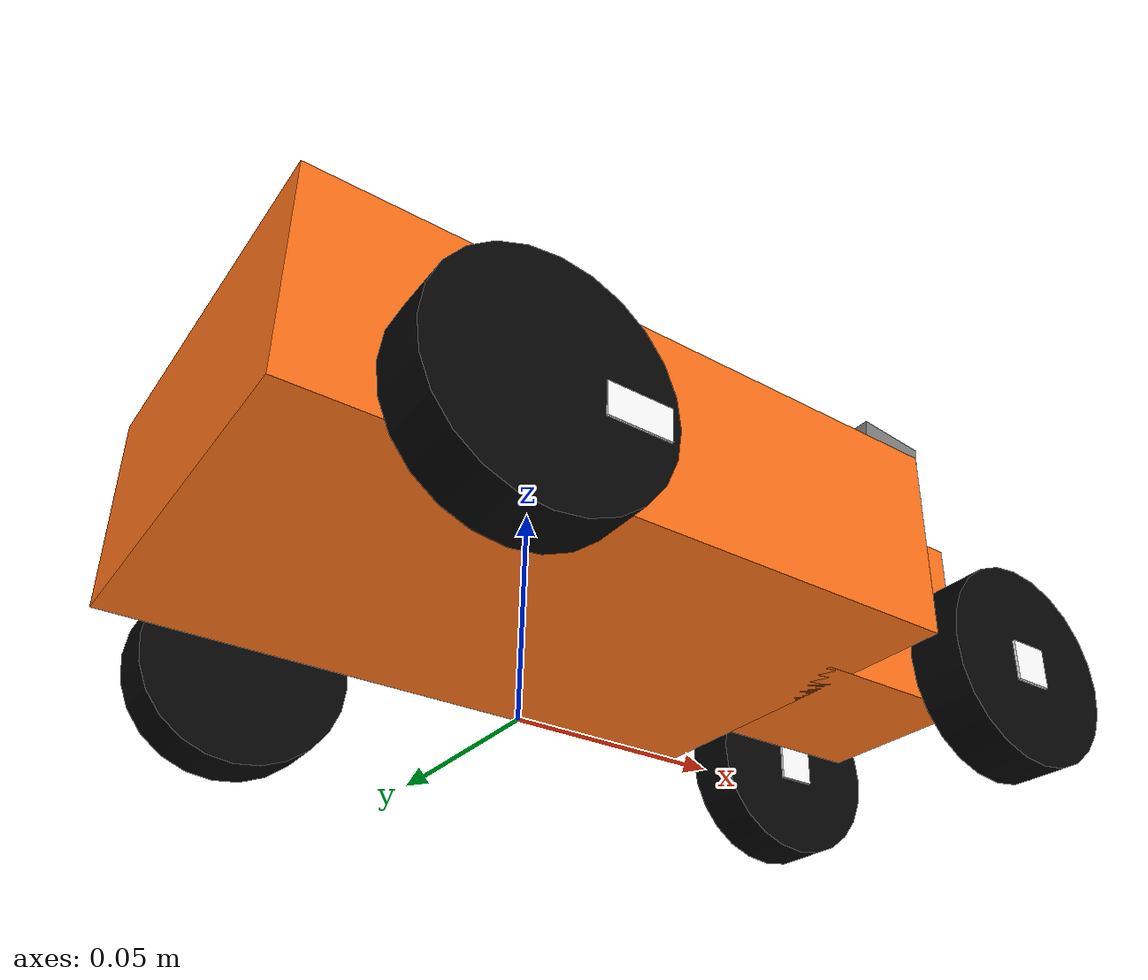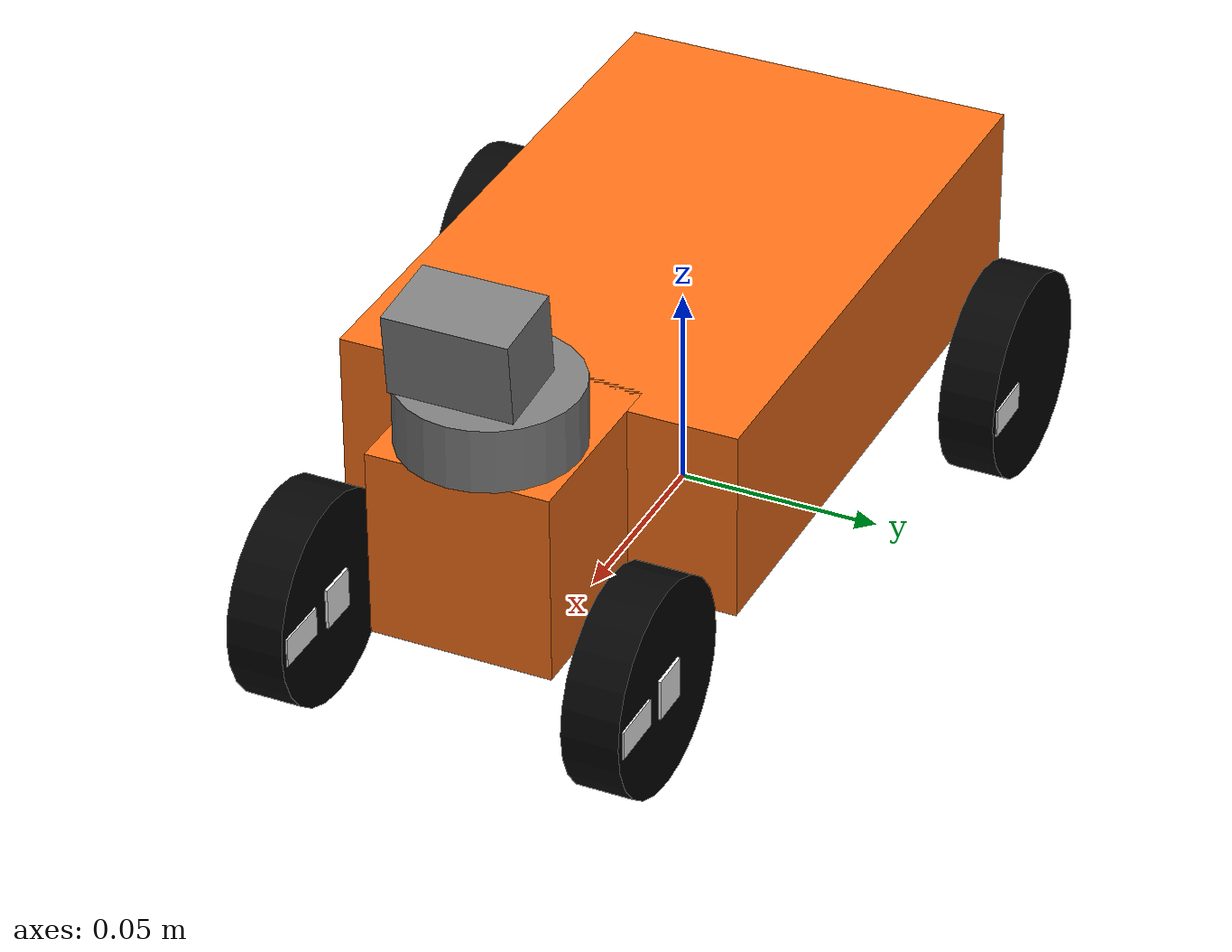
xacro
<?xml version="1.0"?>
<robot name="wall_bot" xmlns:xacro="http://www.ros.org/wiki/xacro">

  <!-- Basic dimensions -->

  <!-- Scale the original wall bot down so its footprint is close to LazyGo. -->
  <xacro:property name="model_scale" value="0.39"/>

  <xacro:property name="base_length" value="${0.40 * model_scale}"/>
  <xacro:property name="base_width"  value="${0.25 * model_scale}"/>
  <xacro:property name="base_height" value="${0.12 * model_scale}"/>

  <xacro:property name="wheel_radius" value="${0.065 * model_scale}"/>
  <xacro:property name="wheel_width"  value="${0.035 * model_scale}"/>

  <xacro:property name="wheel_separation" value="${0.34 * model_scale}"/>
  <xacro:property name="wheel_diameter" value="${0.13 * model_scale}"/>

  <xacro:property name="base_origin_z" value="${0.12 * model_scale}"/>
  <xacro:property name="wheel_x_offset" value="${0.10 * model_scale}"/>
  <xacro:property name="wheel_marker_length" value="${0.035 * model_scale}"/>
  <xacro:property name="wheel_marker_width" value="${0.002 * model_scale}"/>
  <xacro:property name="wheel_marker_height" value="${0.018 * model_scale}"/>

  <xacro:property name="laser_radius" value="${0.055 * model_scale}"/>
  <xacro:property name="laser_length" value="${0.04 * model_scale}"/>
  <xacro:property name="laser_x_offset" value="${0.1}"/>
  <xacro:property name="laser_z_offset" value="${0.20 * model_scale}"/>

  <xacro:property name="camera_x_offset" value="0.11"/>
  <xacro:property name="camera_y_offset" value="0.0"/>
  <xacro:property name="camera_z_offset" value="0.10"/>
  <xacro:property name="camera_pitch" value="0.1"/>

  <!-- Materials -->

  <material name="orange">
    <color rgba="1.0 0.45 0.1 1.0"/>
  </material>

  <material name="black">
    <color rgba="0.02 0.02 0.02 1.0"/>
  </material>

  <material name="gray">
    <color rgba="0.5 0.5 0.5 1.0"/>
  </material>

  <material name="white">
    <color rgba="1.0 1.0 1.0 1.0"/>
  </material>

  <!-- Wheel macro -->

<xacro:macro name="wheel_link" params="name">
  <link name="${name}">
    <visual>
      <origin xyz="0 0 0" rpy="1.5708 0 0"/>
      <geometry>
        <cylinder radius="${wheel_radius}" length="${wheel_width}"/>
      </geometry>
      <material name="black"/>
    </visual>

    <collision>
      <origin xyz="0 0 0" rpy="1.5708 0 0"/>
      <geometry>
        <cylinder radius="${wheel_radius}" length="${wheel_width}"/>
      </geometry>
    </collision>

    <inertial>
      <mass value="0.2"/>
      <inertia
        ixx="0.001" ixy="0.0" ixz="0.0"
        iyy="0.001" iyz="0.0"
        izz="0.001"/>
    </inertial>
  </link>
</xacro:macro>

<xacro:wheel_link name="rear_left_wheel_link"/>
<xacro:wheel_link name="rear_right_wheel_link"/>
<xacro:wheel_link name="front_left_wheel_link"/>
<xacro:wheel_link name="front_right_wheel_link"/>

  <!-- Base link -->

  <link name="base_link">
    <visual>
      <origin xyz="0 0 ${base_origin_z}" rpy="0 0 0"/>
      <geometry>
        <box size="${base_length} ${base_width} ${base_height}"/>
      </geometry>
      <material name="orange"/>
    </visual>

    <collision>
      <origin xyz="0 0 ${base_origin_z}" rpy="0 0 0"/>
      <geometry>
        <box size="${base_length} ${base_width} ${base_height}"/>
      </geometry>
    </collision>

    <inertial>
      <origin xyz="0 0 ${base_origin_z}" rpy="0 0 0"/>
      <mass value="2.0"/>
      <inertia
        ixx="0.03" ixy="0.0" ixz="0.0"
        iyy="0.03" iyz="0.0"
        izz="0.04"/>
    </inertial>
  </link>

  <!--Front box link -->

    <link name="front_box_link">
    <visual>
      <origin xyz="0 0 ${base_origin_z}" rpy="0 0 0"/>
      <geometry>
        <box size="${base_length/2} ${base_width/2.2} ${base_height}"/>
      </geometry>
      <material name="orange"/>
    </visual>

    <collision>
      <origin xyz="0 0 ${base_origin_z}" rpy="0 0 0"/>
      <geometry>
         <box size="${base_length/2} ${base_width/2} ${base_height/2}"/>
      </geometry>
    </collision>

    <inertial>
      <origin xyz="0 0 ${base_origin_z}" rpy="0 0 0"/>
      <mass value="2.0"/>
      <inertia
        ixx="0.03" ixy="0.0" ixz="0.0"
        iyy="0.03" iyz="0.0"
        izz="0.04"/>
    </inertial>
  </link>

    <joint name="front_box_base_link_joint" type="fixed">
    <parent link="base_link"/>
    <child link="front_box_link"/>
    <origin xyz="${base_length/2} 0 0" rpy="0 0 0"/>
  </joint>

  <!--Rear Left wheel -->

  <joint name="rear_left_wheel_joint" type="continuous">
    <parent link="base_link"/>
    <child link="rear_left_wheel_link"/>
    <origin xyz="-${wheel_x_offset} ${wheel_separation/2} ${wheel_radius}" rpy="0 0 0"/>
    <axis xyz="0 1 0"/>
  </joint>

  <!-- Left wheel rotation marker -->
<link name="rear_left_wheel_marker_link">
  <visual>
    <origin xyz="0 0 0" rpy="0 0 0"/>
    <geometry>
      <box size="${wheel_marker_length} ${wheel_marker_width} ${wheel_marker_height}"/>
    </geometry>
    <material name="white"/>
  </visual>
</link>

<joint name="rear_left_wheel_marker_joint" type="fixed">
  <parent link="rear_left_wheel_link"/>
  <child link="rear_left_wheel_marker_link"/>
  <origin xyz="${wheel_radius*0.65} ${wheel_width/2 } 0" rpy="0 0 0"/>
</joint>

  <!-- Rear Right wheel -->

  <joint name="rear_right_wheel_joint" type="continuous">
    <parent link="base_link"/>
    <child link="rear_right_wheel_link"/>
    <origin xyz="-${wheel_x_offset} -${wheel_separation/2} ${wheel_radius}" rpy="0 0 0"/>
    <axis xyz="0 1 0"/>
  </joint>

  <!-- Rear Right wheel rotation marker -->
<link name="rear_right_wheel_marker_link">
  <visual>
    <origin xyz="0 0 0" rpy="0 0 0"/>
    <geometry>
      <box size="${wheel_marker_length} ${wheel_marker_width} ${wheel_marker_height}"/>
    </geometry>
    <material name="white"/>
  </visual>
</link>

<joint name="rear_right_wheel_marker_joint" type="fixed">
  <parent link="rear_right_wheel_link"/>
  <child link="rear_right_wheel_marker_link"/>
  <origin xyz="${wheel_radius*0.65} -${wheel_width/2} 0" rpy="0 0 0"/>
</joint>

  <!-- Front Left Wheel -->

<link name = "front_left_steer_link">
 <visual>
      <origin xyz="0 0 0" rpy="0 0 0"/>
      <geometry>
        <box size="0.01 0.015 0.01"/>
      </geometry>
      <material name="white"/>
    </visual>

  <collision>
    <origin xyz="0 0 0" rpy="0 0 0"/>
    <geometry>
      <box size="0.01 0.015 0.01"/>
    </geometry>
  </collision>

  <inertial>
    <mass value="0.02"/>
    <inertia
      ixx="0.00001" ixy="0.0" ixz="0.0"
      iyy="0.00001" iyz="0.0"
      izz="0.00001"/>
  </inertial>
</link>

<joint name = "front_left_steer_joint" type="revolute">
  <parent link="base_link"/>
  <child link="front_left_steer_link"/>
  <origin xyz="${base_length / 1.4} ${base_width/2.4} ${wheel_radius}" rpy="0 0 0"/>
  <axis xyz="0 0 1"/>
  <limit lower="-0.6" upper="0.6" effort="10.0" velocity="5.0" />
</joint>

  <joint name="front_left_wheel_joint" type="continuous">
    <parent link="front_left_steer_link"/>
    <child link="front_left_wheel_link"/>
    <origin xyz="0 0 0" rpy="0 0 0"/>
    <axis xyz="0 1 0"/>
  </joint>

    <!-- Front Left wheel rotation marker -->
<link name="front_left_wheel_marker_link">
  <visual>
    <origin xyz="0 0 0" rpy="0 0 0"/>
    <geometry>
      <box size="${wheel_marker_length} ${wheel_marker_width} ${wheel_marker_height}"/>
    </geometry>
    <material name="white"/>
  </visual>
</link>

<joint name="front_left_wheel_marker_joint" type="fixed">
  <parent link="front_left_wheel_link"/>
  <child link="front_left_wheel_marker_link"/>
  <origin xyz="${wheel_radius*0.65} ${wheel_width/2 } 0" rpy="0 0 0"/>
</joint>

  <!-- Front Right Wheel -->
<link name = "front_right_steer_link">
 <visual>
      <origin xyz="0 0 0" rpy="0 0 0"/>
      <geometry>
        <box size="0.01 0.015 0.01"/>
      </geometry>
      <material name="white"/>
    </visual>

  <collision>
    <origin xyz="0 0 0" rpy="0 0 0"/>
    <geometry>
      <box size="0.01 0.015 0.01"/>
    </geometry>
  </collision>

  <inertial>
    <mass value="0.02"/>
    <inertia
      ixx="0.00001" ixy="0.0" ixz="0.0"
      iyy="0.00001" iyz="0.0"
      izz="0.00001"/>
  </inertial>
</link>

<joint name = "front_right_steer_joint" type="revolute">
  <parent link="base_link"/>
  <child link="front_right_steer_link"/>
  <origin xyz="${base_length / 1.4} -${base_width/2.4} ${wheel_radius}" rpy="0 0 0"/>
  <axis xyz="0 0 1"/>
  <limit lower="-0.6" upper="0.6" effort="10.0" velocity="5.0" />
</joint>

  <joint name="front_right_wheel_joint" type="continuous">
    <parent link="front_right_steer_link"/>
    <child link="front_right_wheel_link"/>
    <origin xyz="0 0 0" rpy="0 0 0"/>
    <axis xyz="0 1 0"/>
  </joint>

    <!-- Front Left wheel rotation marker -->
<link name="front_right_wheel_marker_link">
  <visual>
    <origin xyz="0 0 0" rpy="0 0 0"/>
    <geometry>
      <box size="${wheel_marker_length} ${wheel_marker_width} ${wheel_marker_height}"/>
    </geometry>
    <material name="white"/>
  </visual>
</link>

<joint name="front_right_wheel_marker_joint" type="fixed">
  <parent link="front_right_wheel_link"/>
  <child link="front_right_wheel_marker_link"/>
  <origin xyz="${wheel_radius*0.65} ${wheel_width/2 } 0" rpy="0 0 0"/>
</joint>

  <!-- LiDAR -->

  <link name="laser_link">
    <visual>
      <origin xyz="0 0 0" rpy="0 0 0"/>
      <geometry>
        <cylinder radius="${laser_radius}" length="${laser_length}"/>
      </geometry>
      <material name="gray"/>
    </visual>

    <collision>
      <origin xyz="0 0 0" rpy="0 0 0"/>
      <geometry>
        <cylinder radius="${laser_radius}" length="${laser_length}"/>
      </geometry>
    </collision>

    <inertial>
      <mass value="0.1"/>
      <inertia
        ixx="0.0002" ixy="0.0" ixz="0.0"
        iyy="0.0002" iyz="0.0"
        izz="0.0002"/>
    </inertial>
  </link>

  <joint name="laser_joint" type="fixed">
    <parent link="base_link"/>
    <child link="laser_link"/>
    <origin xyz="${laser_x_offset} 0 ${laser_z_offset}" rpy="0 0 0"/>
  </joint>

  <!-- CAMERA -->

  <link name="camera_link">
    <visual>
      <geometry>
        <box size="0.02 0.03 0.02"/>
      </geometry>
      <material name="gray"/>
    </visual>
  </link>

  <joint name="camera_joint" type="fixed">
    <parent link="base_link"/>
    <child link="camera_link"/>
    <origin xyz="${camera_x_offset} ${camera_y_offset} ${camera_z_offset}"
            rpy="0 ${camera_pitch} 0"/>
  </joint>

  <link name="camera_link_optical"/>

  <joint name="camera_optical_joint" type="fixed">
    <parent link="camera_link"/>
    <child link="camera_link_optical"/>
    <origin xyz="0 0 0" rpy="${-pi/2} 0 ${-pi/2}"/>
  </joint>

  <!-- Gazebo material/friction -->

  <gazebo reference="base_link">
    <material>Gazebo/Orange</material>
  </gazebo>

  <gazebo reference="front_box_link">
    <material>Gazebo/Orange</material>
  </gazebo>

  <gazebo reference="front_left_steer_link">
    <material>Gazebo/Grey</material>
  </gazebo>

  <gazebo reference="front_right_steer_link">
    <material>Gazebo/Grey</material>
  </gazebo>

  <gazebo reference="front_left_wheel_link">
    <material>Gazebo/Black</material>
    <mu1>20.0</mu1>
    <mu2>20.0</mu2>
    <slip1>0.0</slip1>
    <slip2>0.0</slip2>
  </gazebo>

  <gazebo reference="front_right_wheel_link">
    <material>Gazebo/Black</material>
    <mu1>20.0</mu1>
    <mu2>20.0</mu2>
    <slip1>0.0</slip1>
    <slip2>0.0</slip2>
  </gazebo>

  <gazebo reference="rear_left_wheel_link">
    <material>Gazebo/Black</material>
    <mu1>20.0</mu1>
    <mu2>20.0</mu2>
    <slip1>0.0</slip1>
    <slip2>0.0</slip2>
  </gazebo>

  <gazebo reference="rear_right_wheel_link">
    <material>Gazebo/Black</material>
    <mu1>20.0</mu1>
    <mu2>20.0</mu2>
    <slip1>0.0</slip1>
    <slip2>0.0</slip2>
  </gazebo>

  <!-- Gazebo LiDAR sensor -->

  <gazebo reference="laser_link">
    <sensor name="lidar_sensor" type="ray">
      <always_on>true</always_on>
      <visualize>false</visualize>
      <update_rate>10</update_rate>

      <ray>
        <scan>
          <horizontal>
            <samples>360</samples>
            <resolution>1</resolution>
            <min_angle>-3.14159</min_angle>
            <max_angle>3.14159</max_angle>
          </horizontal>
        </scan>

        <range>
          <min>0.12</min>
          <max>8.0</max>
          <resolution>0.01</resolution>
        </range>

        <noise>
          <type>gaussian</type>
          <mean>0.0</mean>
          <stddev>0.01</stddev>
        </noise>
      </ray>

      <plugin name="gazebo_ros_laser_controller" filename="libgazebo_ros_ray_sensor.so">
        <ros>
          <remapping>~/out:=scan</remapping>
        </ros>
        <output_type>sensor_msgs/LaserScan</output_type>
        <frame_name>laser_link</frame_name>
      </plugin>
    </sensor>
  </gazebo>

  <!-- Gazebo Camera -->
  <gazebo reference="camera_link">
  <sensor name="line_camera" type="camera">
    <always_on>true</always_on>
    <visualize>true</visualize>
    <update_rate>30</update_rate>

    <camera>
      <horizontal_fov>2.79253</horizontal_fov>
      <image>
        <width>1280</width>
        <height>720</height>
        <format>R8G8B8</format>
      </image>
      <clip>
        <near>0.02</near>
        <far>2.0</far>
      </clip>
    </camera>

    <plugin name="line_camera_plugin" filename="libgazebo_ros_camera.so">
      <camera_name>line_camera</camera_name>
      <frame_name>camera_link_optical</frame_name>
    </plugin>
  </sensor>
</gazebo>

  <!-- Ros2 control              -->

<ros2_control name="GazeboSystem" type="system">
  <hardware>
    <plugin>gazebo_ros2_control/GazeboSystem</plugin>
  </hardware>

  <joint name="front_left_steer_joint">
    <command_interface name="position"/>
    <state_interface name="position"/>
  </joint>

  <joint name="front_right_steer_joint">
    <command_interface name="position"/>
    <state_interface name="position"/>
  </joint>

  <joint name="front_left_wheel_joint">
    <state_interface name="position"/>
    <state_interface name="velocity"/>
  </joint>

  <joint name="front_right_wheel_joint">
    <state_interface name="position"/>
    <state_interface name="velocity"/>
  </joint>

  <joint name="rear_left_wheel_joint">
    <command_interface name="velocity"/>
    <state_interface name="velocity"/>
    <state_interface name="position"/>
  </joint>

  <joint name="rear_right_wheel_joint">
    <command_interface name="velocity"/>
    <state_interface name="velocity"/>
    <state_interface name="position"/>
  </joint>
</ros2_control>

  <!-- Plug in for Ros2 control              -->

<gazebo>
  <plugin filename="libgazebo_ros2_control.so" name="gazebo_ros2_control">
    <parameters>$(find wall_bot_gazebo)/config/ackermann_controllers.yaml</parameters>
  </plugin>
</gazebo>

</robot>
